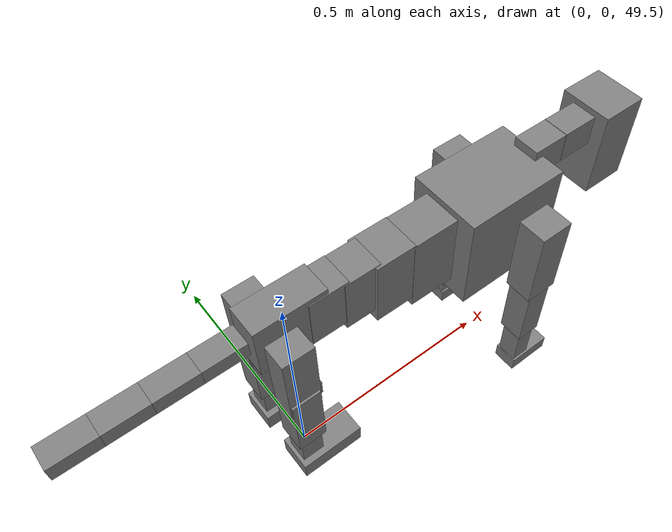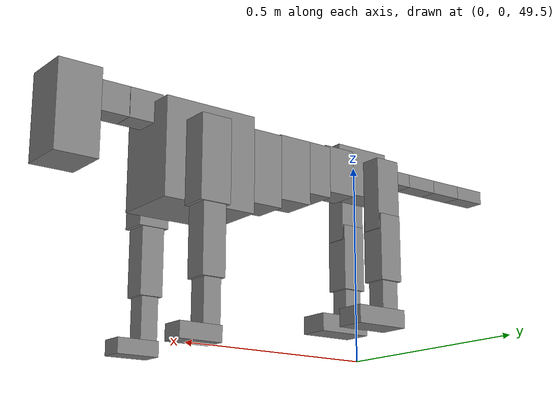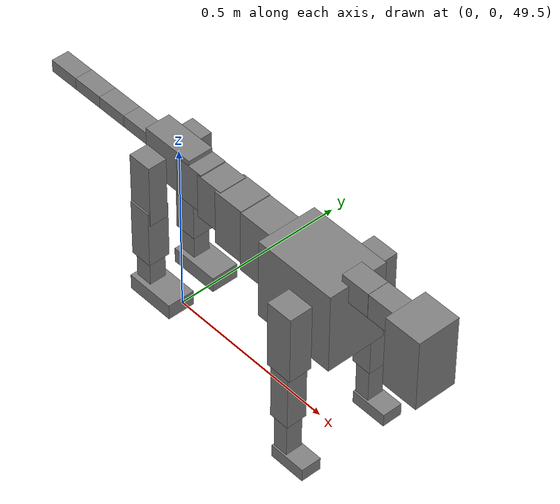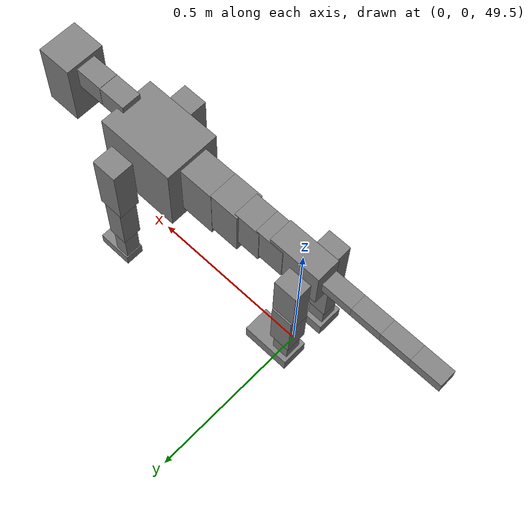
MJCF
<mujoco model="dog">

    <default>
        <joint armature="0.02" stiffness="1" damping="0.2" limited="true"/>
        <geom condim="3" friction="1 0.05 0.05" margin="0.01"/>
        <motor ctrllimited="true" ctrlrange="-1.0 1.0" forcelimited="true" gear="50"/>
    </default>

    <compiler inertiafromgeom="true" angle="radian"/>

    <option timestep="0.016" iterations="50" tolerance="1e-10" solver="Newton" jacobian="dense" cone="pyramidal"/>

    <size nconmax="20000" njmax="60000" nstack="5000000"/>
    <visual>
        <map force="0.1" zfar="30"/>
        <rgba haze="0.15 0.25 0.35 1"/>
        <quality shadowsize="2048"/>
        <global offwidth="800" offheight="800"/>
    </visual>

    <asset>
        <texture type="skybox" builtin="gradient" rgb1="0.3 0.5 0.7" rgb2="0 0 0" width="512" height="512"/>
        <texture name="texplane" type="2d" builtin="checker" rgb1=".2 .3 .4" rgb2=".1 0.15 0.2" width="512" height="512"
                 mark="cross" markrgb=".8 .8 .8"/>
        <texture name="texgeom" type="cube" builtin="flat" mark="cross" width="127" height="1278" rgb1="0.8 0.6 0.4"
                 rgb2="0.8 0.6 0.4" markrgb="1 1 1" random="0.01"/>

        <material name="matplane" reflectance="0.3" texture="texplane" texrepeat="1 1" texuniform="true"/>
        <material name="matgeom" texture="texgeom" texuniform="true" rgba="0.8 0.6 .4 1"/>
    </asset>

    <worldbody>
        <geom name="floor" pos="0 0 0" size="0 0 .25" type="plane" material="matplane" condim="3"/>

        <light directional="false" diffuse=".2 .2 .2" specular="0 0 0" pos="0 0 5" dir="0 0 -1" castshadow="false"/>
        <light mode="targetbodycom" target="torso" directional="false" diffuse=".8 .8 .8" specular="0.3 0.3 0.3"
               pos="0 0 4.0" dir="0 0 -1"/>

        <body name="root" pos="0 0 50">
            <freejoint name="root_1"/>
            <geom type="box" pos="0 0 -0.02" size="0.0774  0.0358  0.063" density="2030"/>

            <body name="spine1" pos="0.054 0 0">
                <joint name="spine1_y" axis="0 1 0" range="0 0.7" limited="true"/>
                <geom type="box" pos="0.02375 0 -0.03" size="0.04375  0.0375  0.05985" density="2030"/>

                <body name="spine2" pos="0.0612 0 0">
                    <joint name="spine2_y" axis="0 1 0" range="-0.15 0.15" limited="true"/>
                    <geom type="box" pos="0.03555  0  -0.04" size="0.04055  0.039  0.06615" density="2030"/>

                    <body name="spine3" pos="0.0730 0 0">
                        <joint name="spine3_y" axis="0 1 0" range="-0.15 0.15" limited="true"/>
                        <geom type="box" pos="0.03555  0  -0.057" size="0.04555  0.0445  0.081" density="2030"/>

                        <body name="spine4" pos="0.0780 0 0">
                            <joint name="spine4_y" axis="0 1 0" range="-0.15 0.15" limited="true"/>
                            <geom type="box" pos="0.05265  0  -0.07" size="0.05265  0.045  0.09135" density="2030"/>

                            <body name="torso" pos="0.1082 0 0">
                                <joint name="torso_y" axis="0 1 0" range="-0.15 0.15" limited="true"/>
                                <geom type="box" pos="0.11925  0  -0.085" size="0.11925  0.085  0.11745"
                                      density="2030"/>

                                <body name="neck1" pos="0.2160  0   0.0180">
                                    <joint name="neck1_y" axis="0 1 0" range="-1.2  -1" limited="true"/>
                                    <geom type="box" pos="0.0423  0  0" size="0.0423  0.03  0.036" density="2325"/>

                                    <body name="neck2" pos="0.0853  0  0">
                                        <joint name="neck2_y" axis="0 1 0" range="0.1  0" limited="true"/>
                                        <geom type="box" pos="0.0423  0  0" size="0.0423  0.03  0.036" density="2325"/>

                                        <body name="head" pos="0.0853  0  0">
                                            <joint name="head_y" axis="0 1 0" range="-0.3  -0.2" limited="true"/>
                                            <geom type="box" pos="0.0531  0  -0.055" size="0.0531  0.06  0.1044"
                                                  density="4030"/>

                                        </body>
                                    </body>
                                </body>

                                <body name="front_shoulder" pos="0.156  0   -0.0480">
                                    <joint name="front_shoulder_y" axis="0 1 0" range="-1 1.5" limited="true"/>
                                    <geom type="box" pos="0 0.13 -0.0724" size="0.0382  0.0327  0.0991" density="1158"/>
                                    <geom type="box" pos="0 -0.13 -0.0724" size="0.0382  0.0327  0.0991"
                                          density="1158"/>

                                    <body name="front_elbow" pos="0  0  -0.1449">
                                        <joint name="front_elbow_y" axis="0 1 0" range="-2 0" limited="true"/>
                                        <geom type="box" pos="0 0.13 -0.0950" size="0.0289  0.0295  0.0950"
                                              density="1081"/>
                                        <geom type="box" pos="0 -0.13 -0.0950" size="0.0289  0.0295  0.0950"
                                              density="1081"/>

                                        <body name="front_wrist" pos="0  0  -0.1900">
                                            <joint name="front_wrist_y" axis="0 1 0" range="-0.2 0" limited="true"/>
                                            <geom type="box" pos="0 0.13 -0.0585" size="0.0216  0.0240  0.0716"
                                                  density="1664"/>
                                            <geom type="box" pos="0 -0.13 -0.0585" size="0.0216  0.0240  0.0716"
                                                  density="1664"/>

                                            <body name="front_finger_end" pos="0  0  -0.1170">
                                                <joint name="front_finger_y" axis="0 1 0" range="-0.4 1"
                                                       limited="true"/>
                                                <geom type="box" pos="0.0288  0.13  -0.0035"
                                                      size="0.0528  0.0288  0.0185" density="1515"/>
                                                <geom type="box" pos="0.0288  -0.13  -0.0035"
                                                      size="0.0528  0.0288  0.0185" density="1515"/>

                                            </body>

                                        </body>
                                    </body>
                                </body>

                            </body>
                        </body>
                    </body>
                </body>
            </body>

            <body name="back_hip" pos="-0.03 0 -0.018">
                <joint name="back_hip_y" axis="0 1 0" range="-1.5 0.3" limited="true"/>
                <geom type="box" pos="0 0.07 -0.0688" size="0.0342  0.0268  0.0916" density="1154"/>
                <geom type="box" pos="0 -0.07 -0.0688" size="0.0342  0.0268  0.0916" density="1154"/>

                <body name="back_knee" pos="0  0  -0.1376">
                    <joint name="back_knee_y" axis="0 1 0" range="0 2.8" limited="true"/>
                    <geom type="box" pos="0 0.07 -0.0685" size="0.0316  0.0311  0.0841" density="1227"/>
                    <geom type="box" pos="0 -0.07 -0.0685" size="0.0316  0.0311  0.0841" density="1227"/>

                    <body name="back_ankle" pos="0  0  -0.1371">
                        <joint name="back_ankle_y" axis="0 1 0" range="-2.2 0" limited="true"/>
                        <geom type="box" pos="0 0.07 -0.0514" size="0.0243  0.0243  0.0626" density="1284"/>
                        <geom type="box" pos="0 -0.07 -0.0514" size="0.0243  0.0243  0.0626" density="1284"/>

                        <body name="back_toe_end" pos="0  0  -0.1028">
                            <joint name="back_toe_y" axis="0 1 0" range="-0.4 1" limited="true"/>
                            <geom type="box" pos="0.0388  0.07  -0.0073" size="0.0712  0.0388  0.0223" density="1515"/>
                            <geom type="box" pos="0.0388  -0.07  -0.0073" size="0.0712  0.0388  0.0223" density="1515"/>

                        </body>
                    </body>
                </body>
            </body>

            <body name="tail1" pos="-0.074 0 -0.006">
                <joint name="tail1_y" axis="0 1 0" range="-0.2 0.2" limited="true"/>
                <geom type="box" pos="-0.0536  0  0" size="0.045  0.025  0.0175" density="1587"/>

                <body name="tail2" pos="-0.09 0 0">
                    <joint name="tail2_y" axis="0 1 0" range="-0.2 0.2" limited="true"/>
                    <geom type="box" pos="-0.0536  0  0" size="0.045  0.025  0.0175" density="1587"/>

                    <body name="tail3" pos="-0.09 0 0">
                        <joint name="tail3_y" axis="0 1 0" range="-0.2 0.2" limited="true"/>
                        <geom type="box" pos="-0.0536  0  0" size="0.045  0.025  0.0175" density="1587"/>

                        <body name="tail4" pos="-0.09 0 0">
                            <joint name="tail4_y" axis="0 1 0" range="-0.2 0.2" limited="true"/>
                            <geom type="box" pos="-0.0536  0  0" size="0.045  0.025  0.0175" density="1587"/>

                        </body>
                    </body>
                </body>
            </body>
        </body>
    </worldbody>

    <actuator>
        <motor joint="spine1_y" forcerange="-150 150     "/>
        <motor joint="spine2_y" forcerange="-150 150     "/>
        <motor joint="spine3_y" forcerange="-150 150     "/>
        <motor joint="spine4_y" forcerange="-150 150     "/>
        <motor joint="torso_y" forcerange="-150 150     "/>
        <motor joint="neck1_y" forcerange="-100 100       "/>
        <motor joint="neck2_y" forcerange="-100 100       "/>
        <motor joint="head_y" forcerange="-150 150       "/>
        <motor joint="front_shoulder_y" forcerange="-162.07 155.85"/>
        <motor joint="front_elbow_y" forcerange="-193.93 120.70"/>
        <motor joint="front_wrist_y" forcerange="-51.48 140.53"/>
        <motor joint="front_finger_y" forcerange="-73.95 39.52"/>
        <motor joint="back_hip_y" forcerange="-277.64 280.23"/>
        <motor joint="back_knee_y" forcerange="-335.22 317.52"/>
        <motor joint="back_angle_y" forcerange="-72.45 215.57"/>
        <motor joint="back_toe_y" forcerange="-135.29 95.24"/>
        <motor joint="tail1_y" forcerange="-50 50     "/>
        <motor joint="tail2_y" forcerange="-50 50     "/>
        <motor joint="tail3_y" forcerange="-50 50     "/>
        <motor joint="tail4_y" forcerange="-50 50     "/>
    </actuator>
</mujoco>
